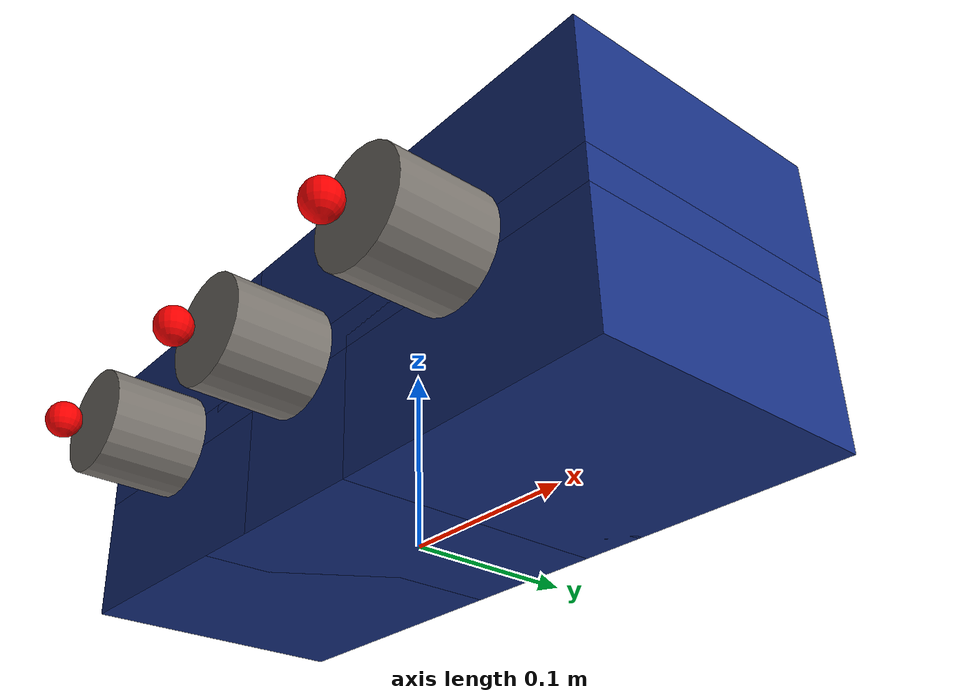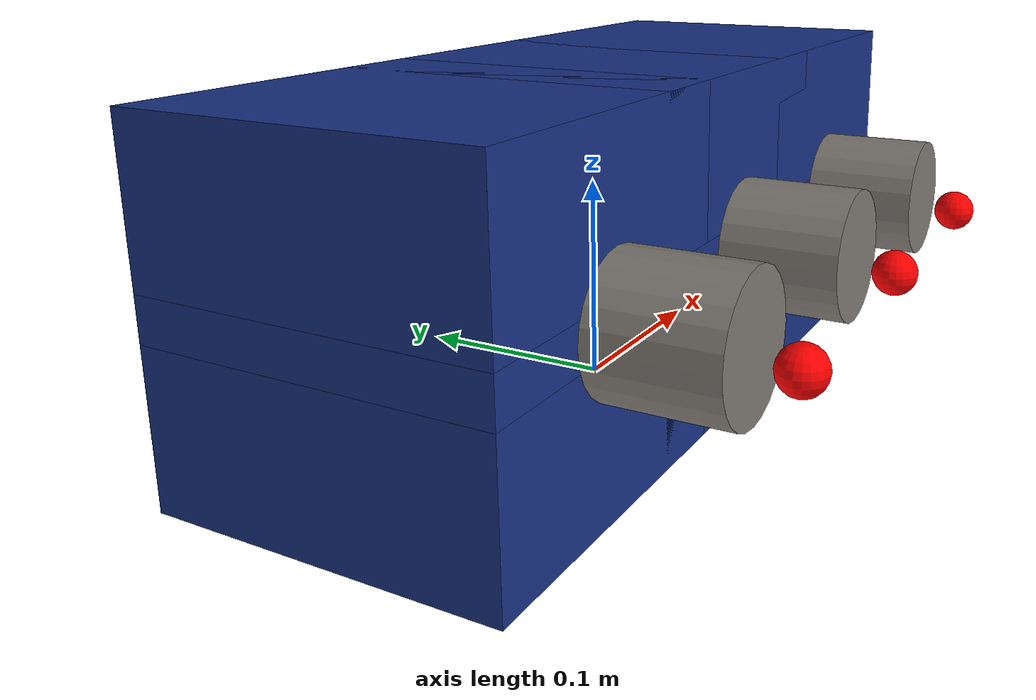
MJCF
<mujoco model="hammerblock">
    <compiler angle="radian" inertiafromgeom="auto" inertiagrouprange="4 5"/>
    <asset>
        <texture name="T_hmr_met" type="cube" file="textures/plaster1.png"/>
        <texture name="T_hmr_wood" type="cube" file="textures/navy_blue.png"/>

        <material name="hmr_col" texture="T_hmr_wood" rgba=".65 .65 .65 1" shininess="1" reflectance=".7"
                  specular=".5"/>
        <material name="hmr_red" rgba=".35 0.1 0 1" shininess="1" reflectance=".7" specular=".5"/>
        <material name="hmr_metal" texture="T_hmr_met" rgba=".65 .65 .65 1" shininess="1" reflectance=".7"
                  specular=".5"/>
        <material name="hmr_wood" texture="T_hmr_wood" shininess="1" reflectance=".7" specular=".5"/>
    </asset>
    <default>

        <default class="hmr_base">
            <joint armature="0.001" damping="2" limited="true"/>
            <geom conaffinity="0" contype="0" group="1" type="mesh"/>
            <position ctrllimited="true" ctrlrange="0 1.57"/>
            <default class="hmr_col">
                <geom conaffinity="1" condim="3" contype="1" group="0" material="hmr_col" solimp="0.99 0.99 0.01"
                      solref="0.01 1"/>
            </default>
        </default>
    </default>

    <worldbody>
        <body>
            <body name="object">
                <body name="case1" pos="0 0 0">
                    <geom class="hmr_col" pos="0 0 0.125" size="0.08 0.08 0.035" type="box" density="5000"/>
                    <geom class="hmr_col" pos="0.038 0 0.08" size="0.042 0.08 0.01" type="box" density="5000"/>
                    <geom class="hmr_col" pos="-0.038 0 0.08" size="0.042 0.08 0.01" type="box" density="5000"/>
                    <geom class="hmr_col" pos="0 0 0.035" size="0.08 0.08 0.035" type="box" density="5000"/>
                    <body name="button_link_1" pos="0 -0.186 0.08">
                        <joint class="hmr_base" type="slide" axis="0 1 0" range="0 .05" name="slide_joint_1"
                               damping="2"/>
                        <geom class="hmr_col" euler="1.57 0 0" pos="0.0 0.082 0" size="0.03 0.03" type="cylinder"
                              material="hmr_metal"/>
                        <body name="button_pos_1" pos="0 0.042 0.0">
                            <geom class="hmr_col" size="0.01" rgba="1 0 0 0" type="sphere" group="1"/>
                        </body>
                        <site name="goal1" size="0.01" rgba="1 0 0 1" pos="0 0.035 -0.005"/>

                    </body>
                </body>
                <body name="case2" pos="0.122 0 0">
                    <geom class="hmr_col" pos="0 0 0.125" size="0.08 0.08 0.035" type="box" density="5000"/>
                    <geom class="hmr_col" pos="0.038 0 0.08" size="0.042 0.08 0.01" type="box" density="5000"/>
                    <geom class="hmr_col" pos="-0.038 0 0.08" size="0.042 0.08 0.01" type="box" density="5000"/>
                    <geom class="hmr_col" pos="0 0 0.035" size="0.08 0.08 0.035" type="box" density="5000"/>
                    <body name="button_link_2" pos="0 -0.186 0.08">
                        <joint class="hmr_base" type="slide" axis="0 1 0" range="0 .05" name="slide_joint_2"
                               damping="2"/>
                        <geom class="hmr_col" euler="1.57 0 0" pos="0.0 0.082 0" size="0.03 0.03" type="cylinder"
                              material="hmr_metal"/>
                        <body name="button_pos_2" pos="0 0.042 0.0">
                            <geom class="hmr_col" size="0.01" rgba="1 0 0 0" type="sphere"  group="1"/>
                        </body>
                        <site name="goal2" size="0.01" rgba="1 0 0 1" pos="0 0.035 -0.005"/>
                    </body>
                </body>
                <body name="case3" pos="-0.122 0 0">
                    <geom class="hmr_col" pos="0 0 0.125" size="0.08 0.08 0.035" type="box" density="5000"/>
                    <geom class="hmr_col" pos="0.038 0 0.08" size="0.042 0.08 0.01" type="box" density="5000"/>
                    <geom class="hmr_col" pos="-0.038 0 0.08" size="0.042 0.08 0.01" type="box" density="5000"/>
                    <geom class="hmr_col" pos="0 0 0.035" size="0.08 0.08 0.035" type="box" density="5000"/>
                    <body name="button_link_3" pos="0 -0.186 0.08">
                        <joint class="hmr_base" type="slide" axis="0 1 0" range="0 .05" name="slide_joint_3"
                               damping="2"/>
                        <geom class="hmr_col" euler="1.57 0 0" pos="0.0 0.082 0" size="0.03 0.03" type="cylinder"
                              material="hmr_metal"/>
                        <body name="button_pos_3" pos="0 0.042 0.0">
                            <geom class="hmr_col" size="0.01" rgba="1 0 0 0" type="sphere" group="1"/>
                        </body>
                        <site name="goal3" size="0.01" rgba="1 0 0 1" pos="0 0.035 -0.005"/>
                    </body>
                </body>
            </body>
            <site rgba="0 0 0 0" size="0.0005" pos="0 0 -0.08" name="bottom_site"/>
            <site rgba="0 0 0 0" size="0.0005" pos="0 0 0.65" name="top_site"/>
            <site rgba="0 0 0 0" size="0.0005" pos="0.011 0.09 0" name="horizontal_radius_site"/>
        </body>
    </worldbody>
</mujoco>
